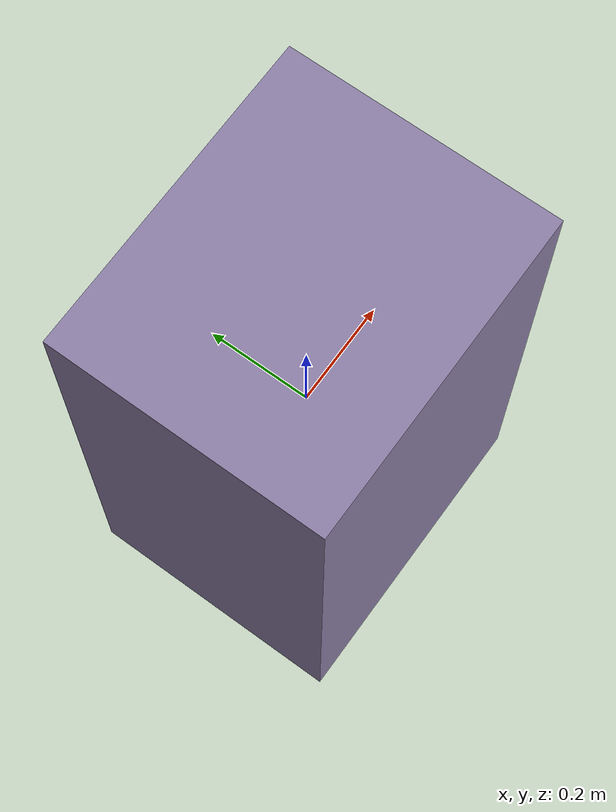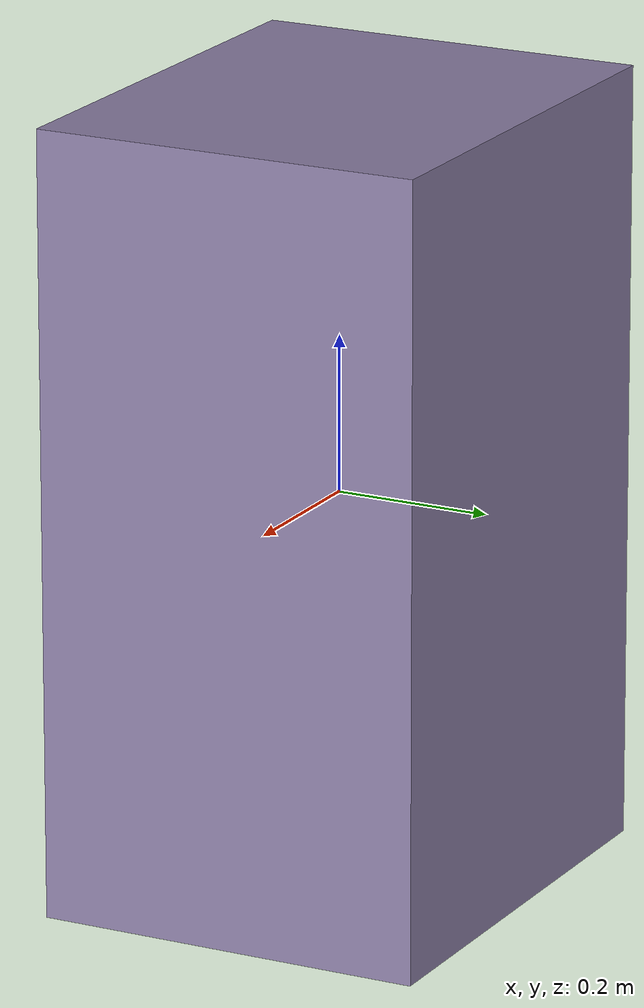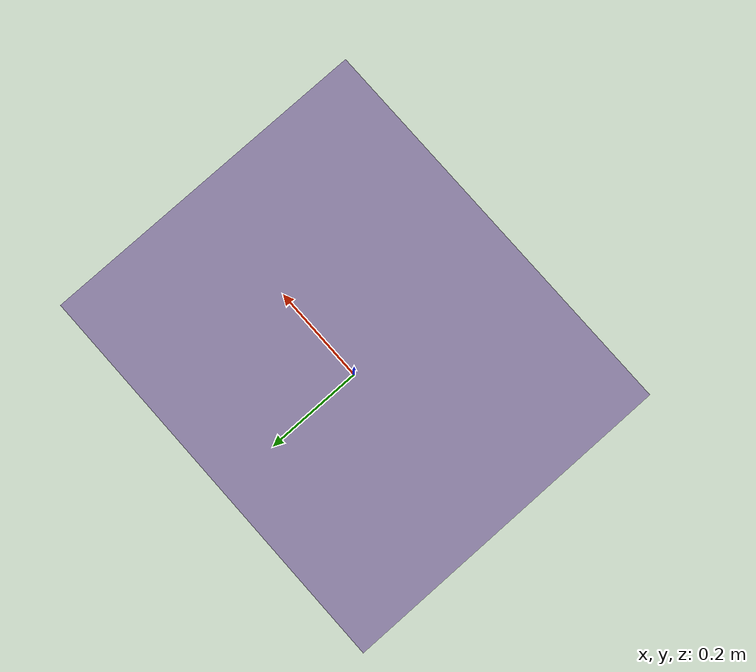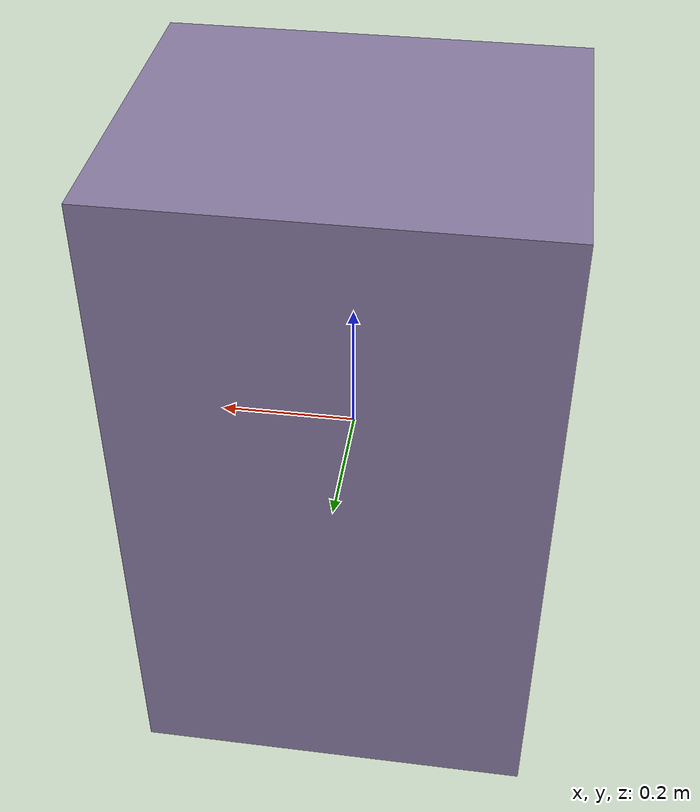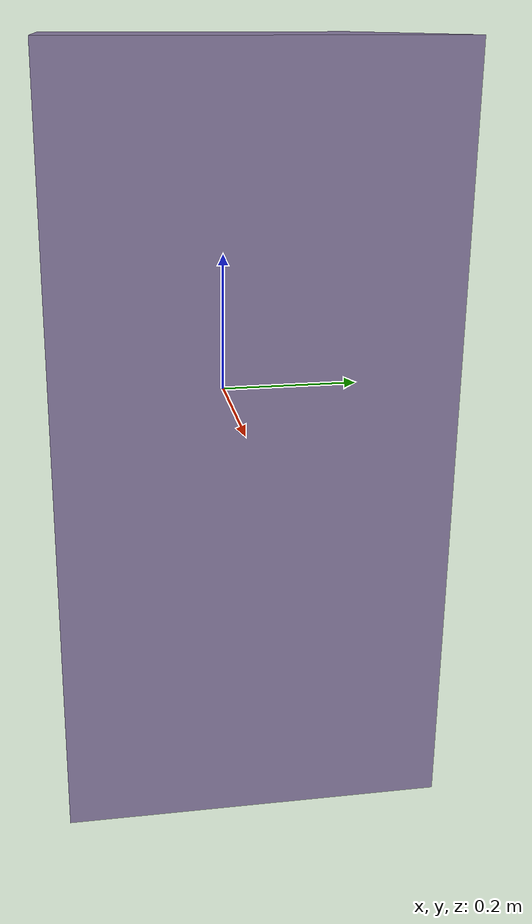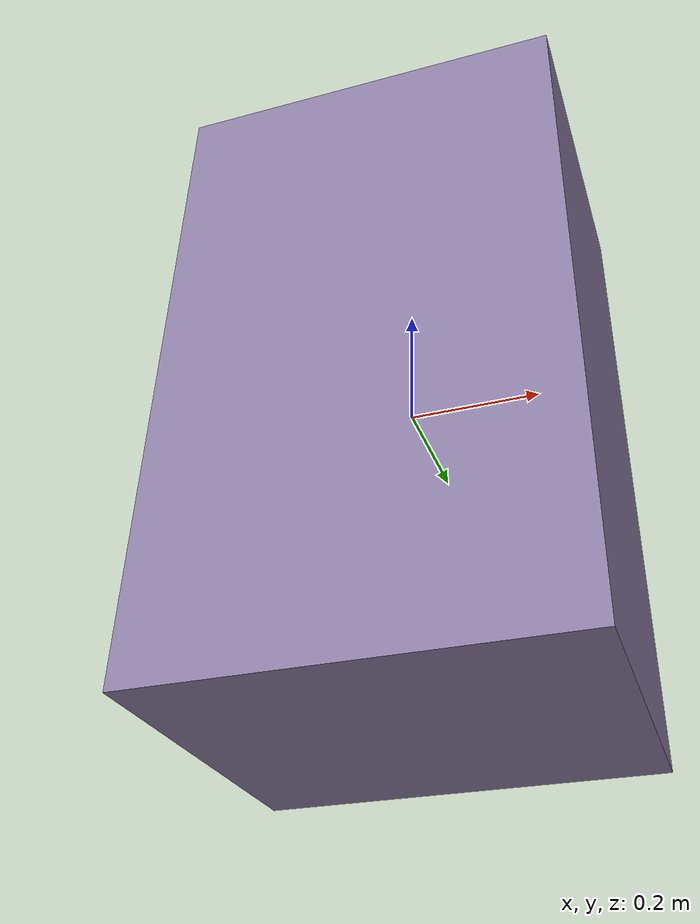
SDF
<?xml version="1.0"?>
<sdf version="1.6">
  <model name="MaleVisitorOnPhone">
    <static>true</static>
    <link name="link">
      <collision name="col">
        <geometry>
          <box>
            <size>0.6 0.5 1.0</size>
          </box>
        </geometry>
      </collision>
      <visual name="vis">
        <geometry>
          <box>
            <size>0.6 0.5 1.0</size>
          </box>
        </geometry>
        <material>
          <ambient>0.55 0.5 0.65 1</ambient>
          <diffuse>0.55 0.5 0.65 1</diffuse>
        </material>
      </visual>
    </link>
  </model>
</sdf>
